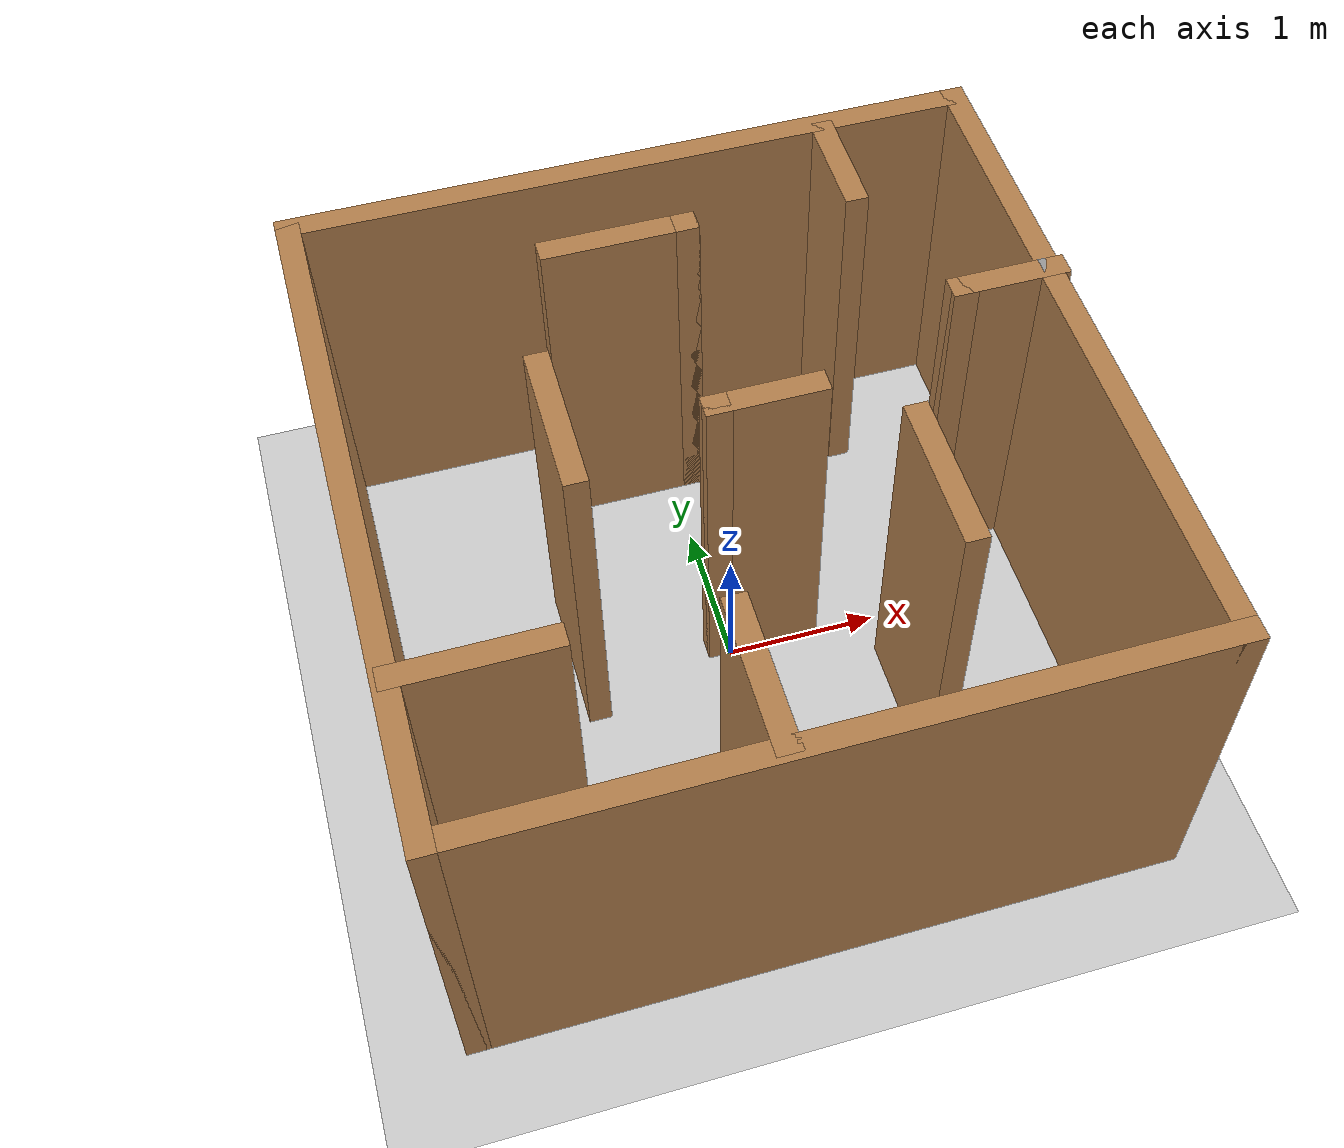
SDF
<?xml version="1.0"?>
<sdf version="1.6">
  <world name="default">

    <include>
      <uri>model://ground_plane</uri>
    </include>

    <include>
      <uri>model://sun</uri>
    </include>

    <scene>
      <shadows>false</shadows>
    </scene>

    <gui fullscreen='0'>
      <camera name='user_camera'>
        <pose frame=''>0.319654 -0.235002 9.29441 0 1.5138 0.009599</pose>
        <view_controller>orbit</view_controller>
        <projection_type>perspective</projection_type>
      </camera>
    </gui>

    <physics type="ode">
      <real_time_update_rate>1000.0</real_time_update_rate>
      <max_step_size>0.001</max_step_size>
      <real_time_factor>1</real_time_factor>
      <ode>
        <solver>
          <type>quick</type>
          <iters>150</iters>
          <precon_iters>0</precon_iters>
          <sor>1.400000</sor>
          <use_dynamic_moi_rescaling>1</use_dynamic_moi_rescaling>
        </solver>
        <constraints>
          <cfm>0.00001</cfm>
          <erp>0.2</erp>
          <contact_max_correcting_vel>2000.000000</contact_max_correcting_vel>
          <contact_surface_layer>0.01000</contact_surface_layer>
        </constraints>
      </ode>
    </physics>

    <include>
	# Maze_2 Model
      <uri>model://Small_maze</uri>
      <pose>0 0 0 0 0 0</pose>
    </include>

  </world>
</sdf>

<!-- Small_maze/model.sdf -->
<sdf version='1.7'>
  <model name='Small_maze'>
    <pose>-0.045 -0.045 0 0 -0 0</pose>
    <link name='Wall_0'>
      <collision name='Wall_0_Collision'>
        <geometry>
          <box>
            <size>4.5 0.15 2.5</size>
          </box>
        </geometry>
        <pose>0 0 1.25 0 -0 0</pose>
      </collision>
      <visual name='Wall_0_Visual'>
        <pose>0 0 1.25 0 -0 0</pose>
        <geometry>
          <box>
            <size>4.5 0.15 2.5</size>
          </box>
        </geometry>
        <material>
          <script>
            <uri>file://media/materials/scripts/gazebo.material</uri>
            <name>Gazebo/Wood</name>
          </script>
          <ambient>1 1 1 1</ambient>
        </material>
        <meta>
          <layer>0</layer>
        </meta>
      </visual>
      <pose>-0.02 -2.175 0 0 -0 0</pose>
    </link>
    <link name='Wall_1'>
      <collision name='Wall_1_Collision'>
        <geometry>
          <box>
            <size>4.5 0.15 2.5</size>
          </box>
        </geometry>
        <pose>0 0 1.25 0 -0 0</pose>
      </collision>
      <visual name='Wall_1_Visual'>
        <pose>0 0 1.25 0 -0 0</pose>
        <geometry>
          <box>
            <size>4.5 0.15 2.5</size>
          </box>
        </geometry>
        <material>
          <script>
            <uri>file://media/materials/scripts/gazebo.material</uri>
            <name>Gazebo/Wood</name>
          </script>
          <ambient>1 1 1 1</ambient>
        </material>
        <meta>
          <layer>0</layer>
        </meta>
      </visual>
      <pose>2.155 0 0 0 -0 1.5708</pose>
    </link>
    <link name='Wall_11'>
      <collision name='Wall_11_Collision'>
        <geometry>
          <box>
            <size>1 0.15 2.5</size>
          </box>
        </geometry>
        <pose>0 0 1.25 0 -0 0</pose>
      </collision>
      <visual name='Wall_11_Visual'>
        <pose>0 0 1.25 0 -0 0</pose>
        <geometry>
          <box>
            <size>1 0.15 2.5</size>
          </box>
        </geometry>
        <material>
          <script>
            <uri>file://media/materials/scripts/gazebo.material</uri>
            <name>Gazebo/Wood</name>
          </script>
          <ambient>1 1 1 1</ambient>
        </material>
        <meta>
          <layer>0</layer>
        </meta>
      </visual>
      <pose>-0.965 0.24 0 0 -0 1.5708</pose>
    </link>
    <link name='Wall_13'>
      <collision name='Wall_13_Collision'>
        <geometry>
          <box>
            <size>0.75 0.15 2.5</size>
          </box>
        </geometry>
        <pose>0 0 1.25 0 -0 0</pose>
      </collision>
      <visual name='Wall_13_Visual'>
        <pose>0 0 1.25 0 -0 0</pose>
        <geometry>
          <box>
            <size>0.75 0.15 2.5</size>
          </box>
        </geometry>
        <material>
          <script>
            <uri>file://media/materials/scripts/gazebo.material</uri>
            <name>Gazebo/Wood</name>
          </script>
          <ambient>1 1 1 1</ambient>
        </material>
        <meta>
          <layer>0</layer>
        </meta>
      </visual>
      <pose>0.225 0.075 0 0 -0 3.14159</pose>
    </link>
    <link name='Wall_14'>
      <collision name='Wall_14_Collision'>
        <geometry>
          <box>
            <size>0.16 0.15 2.5</size>
          </box>
        </geometry>
        <pose>0 0 1.25 0 -0 0</pose>
      </collision>
      <visual name='Wall_14_Visual'>
        <pose>0 0 1.25 0 -0 0</pose>
        <geometry>
          <box>
            <size>0.16 0.15 2.5</size>
          </box>
        </geometry>
        <material>
          <script>
            <uri>file://media/materials/scripts/gazebo.material</uri>
            <name>Gazebo/Wood</name>
          </script>
          <ambient>1 1 1 1</ambient>
        </material>
        <meta>
          <layer>0</layer>
        </meta>
      </visual>
      <pose>-0.07 0.075 0 0 -0 0</pose>
    </link>
    <link name='Wall_16'>
      <collision name='Wall_16_Collision'>
        <geometry>
          <box>
            <size>1 0.15 2.5</size>
          </box>
        </geometry>
        <pose>0 0 1.25 0 -0 0</pose>
      </collision>
      <visual name='Wall_16_Visual'>
        <pose>0 0 1.25 0 -0 0</pose>
        <geometry>
          <box>
            <size>1 0.15 2.5</size>
          </box>
        </geometry>
        <material>
          <script>
            <uri>file://media/materials/scripts/gazebo.material</uri>
            <name>Gazebo/Wood</name>
          </script>
          <ambient>1 1 1 1</ambient>
        </material>
        <meta>
          <layer>0</layer>
        </meta>
      </visual>
      <pose>-0.27 1.545 0 0 -0 0</pose>
    </link>
    <link name='Wall_17'>
      <collision name='Wall_17_Collision'>
        <geometry>
          <box>
            <size>0.15 0.15 2.5</size>
          </box>
        </geometry>
        <pose>0 0 1.25 0 -0 0</pose>
      </collision>
      <visual name='Wall_17_Visual'>
        <pose>0 0 1.25 0 -0 0</pose>
        <geometry>
          <box>
            <size>0.15 0.15 2.5</size>
          </box>
        </geometry>
        <material>
          <script>
            <uri>file://media/materials/scripts/gazebo.material</uri>
            <name>Gazebo/Wood</name>
          </script>
          <ambient>1 1 1 1</ambient>
        </material>
        <meta>
          <layer>0</layer>
        </meta>
      </visual>
      <pose>0.155 1.545 0 0 -0 0</pose>
    </link>
    <link name='Wall_19'>
      <collision name='Wall_19_Collision'>
        <geometry>
          <box>
            <size>0.75 0.15 2.5</size>
          </box>
        </geometry>
        <pose>0 0 1.25 0 -0 0</pose>
      </collision>
      <visual name='Wall_19_Visual'>
        <pose>0 0 1.25 0 -0 0</pose>
        <geometry>
          <box>
            <size>0.75 0.15 2.5</size>
          </box>
        </geometry>
        <material>
          <script>
            <uri>file://media/materials/scripts/gazebo.material</uri>
            <name>Gazebo/Wood</name>
          </script>
          <ambient>1 1 1 1</ambient>
        </material>
        <meta>
          <layer>0</layer>
        </meta>
      </visual>
      <pose>1.235 1.805 0 0 -0 1.5708</pose>
    </link>
    <link name='Wall_2'>
      <collision name='Wall_2_Collision'>
        <geometry>
          <box>
            <size>4.5 0.15 2.5</size>
          </box>
        </geometry>
        <pose>0 0 1.25 0 -0 0</pose>
      </collision>
      <visual name='Wall_2_Visual'>
        <pose>0 0 1.25 0 -0 0</pose>
        <geometry>
          <box>
            <size>4.5 0.15 2.5</size>
          </box>
        </geometry>
        <material>
          <script>
            <uri>file://media/materials/scripts/gazebo.material</uri>
            <name>Gazebo/Wood</name>
          </script>
          <ambient>1 1 1 1</ambient>
        </material>
        <meta>
          <layer>0</layer>
        </meta>
      </visual>
      <pose>-0.02 2.175 0 0 -0 3.14159</pose>
    </link>
    <link name='Wall_21'>
      <collision name='Wall_21_Collision'>
        <geometry>
          <box>
            <size>0.16 0.15 2.5</size>
          </box>
        </geometry>
        <pose>0 0 1.25 0 -0 0</pose>
      </collision>
      <visual name='Wall_21_Visual'>
        <pose>0 0 1.25 0 -0 0</pose>
        <geometry>
          <box>
            <size>0.16 0.15 2.5</size>
          </box>
        </geometry>
        <material>
          <script>
            <uri>file://media/materials/scripts/gazebo.material</uri>
            <name>Gazebo/Grey</name>
          </script>
          <ambient>1 1 1 1</ambient>
        </material>
        <meta>
          <layer>0</layer>
        </meta>
      </visual>
      <pose>2.19 0.555 0 0 -0 0</pose>
    </link>
    <link name='Wall_22'>
      <collision name='Wall_22_Collision'>
        <geometry>
          <box>
            <size>0.75 0.15 2.5</size>
          </box>
        </geometry>
        <pose>0 0 1.25 0 -0 0</pose>
      </collision>
      <visual name='Wall_22_Visual'>
        <pose>0 0 1.25 0 -0 0</pose>
        <geometry>
          <box>
            <size>0.75 0.15 2.5</size>
          </box>
        </geometry>
        <material>
          <script>
            <uri>file://media/materials/scripts/gazebo.material</uri>
            <name>Gazebo/Wood</name>
          </script>
          <ambient>1 1 1 1</ambient>
        </material>
        <meta>
          <layer>0</layer>
        </meta>
      </visual>
      <pose>1.895 0.555 0 0 -0 3.14159</pose>
    </link>
    <link name='Wall_23'>
      <collision name='Wall_23_Collision'>
        <geometry>
          <box>
            <size>0.16 0.15 2.5</size>
          </box>
        </geometry>
        <pose>0 0 1.25 0 -0 0</pose>
      </collision>
      <visual name='Wall_23_Visual'>
        <pose>0 0 1.25 0 -0 0</pose>
        <geometry>
          <box>
            <size>0.16 0.15 2.5</size>
          </box>
        </geometry>
        <material>
          <script>
            <uri>file://media/materials/scripts/gazebo.material</uri>
            <name>Gazebo/Wood</name>
          </script>
          <ambient>1 1 1 1</ambient>
        </material>
        <meta>
          <layer>0</layer>
        </meta>
      </visual>
      <pose>1.6 0.555 0 0 -0 0</pose>
    </link>
    <link name='Wall_3'>
      <collision name='Wall_3_Collision'>
        <geometry>
          <box>
            <size>4.5 0.15 2.5</size>
          </box>
        </geometry>
        <pose>0 0 1.25 0 -0 0</pose>
      </collision>
      <visual name='Wall_3_Visual'>
        <pose>0 0 1.25 0 -0 0</pose>
        <geometry>
          <box>
            <size>4.5 0.15 2.5</size>
          </box>
        </geometry>
        <material>
          <script>
            <uri>file://media/materials/scripts/gazebo.material</uri>
            <name>Gazebo/Wood</name>
          </script>
          <ambient>1 1 1 1</ambient>
        </material>
        <meta>
          <layer>0</layer>
        </meta>
      </visual>
      <pose>-2.195 0 0 0 -0 -1.5708</pose>
    </link>
    <link name='Wall_5'>
      <collision name='Wall_5_Collision'>
        <geometry>
          <box>
            <size>1 0.15 2.5</size>
          </box>
        </geometry>
        <pose>0 0 1.25 0 -0 0</pose>
      </collision>
      <visual name='Wall_5_Visual'>
        <pose>0 0 1.25 0 -0 0</pose>
        <geometry>
          <box>
            <size>1 0.15 2.5</size>
          </box>
        </geometry>
        <material>
          <script>
            <uri>file://media/materials/scripts/gazebo.material</uri>
            <name>Gazebo/Wood</name>
          </script>
          <ambient>1 1 1 1</ambient>
        </material>
        <meta>
          <layer>0</layer>
        </meta>
      </visual>
      <pose>-1.74 -1.205 0 0 -0 0</pose>
    </link>
    <link name='Wall_7'>
      <collision name='Wall_7_Collision'>
        <geometry>
          <box>
            <size>1 0.15 2.5</size>
          </box>
        </geometry>
        <pose>0 0 1.25 0 -0 0</pose>
      </collision>
      <visual name='Wall_7_Visual'>
        <pose>0 0 1.25 0 -0 0</pose>
        <geometry>
          <box>
            <size>1 0.15 2.5</size>
          </box>
        </geometry>
        <material>
          <script>
            <uri>file://media/materials/scripts/gazebo.material</uri>
            <name>Gazebo/Wood</name>
          </script>
          <ambient>1 1 1 1</ambient>
        </material>
        <meta>
          <layer>0</layer>
        </meta>
      </visual>
      <pose>-0.345 -1.71 0 0 -0 1.5708</pose>
    </link>
    <link name='Wall_9'>
      <collision name='Wall_9_Collision'>
        <geometry>
          <box>
            <size>1 0.15 2.5</size>
          </box>
        </geometry>
        <pose>0 0 1.25 0 -0 0</pose>
      </collision>
      <visual name='Wall_9_Visual'>
        <pose>0 0 1.25 0 -0 0</pose>
        <geometry>
          <box>
            <size>1 0.15 2.5</size>
          </box>
        </geometry>
        <material>
          <script>
            <uri>file://media/materials/scripts/gazebo.material</uri>
            <name>Gazebo/Wood</name>
          </script>
          <ambient>1 1 1 1</ambient>
        </material>
        <meta>
          <layer>0</layer>
        </meta>
      </visual>
      <pose>1.015 -0.74 0 0 -0 -1.5708</pose>
    </link>
    <static>1</static>
  </model>
</sdf>
